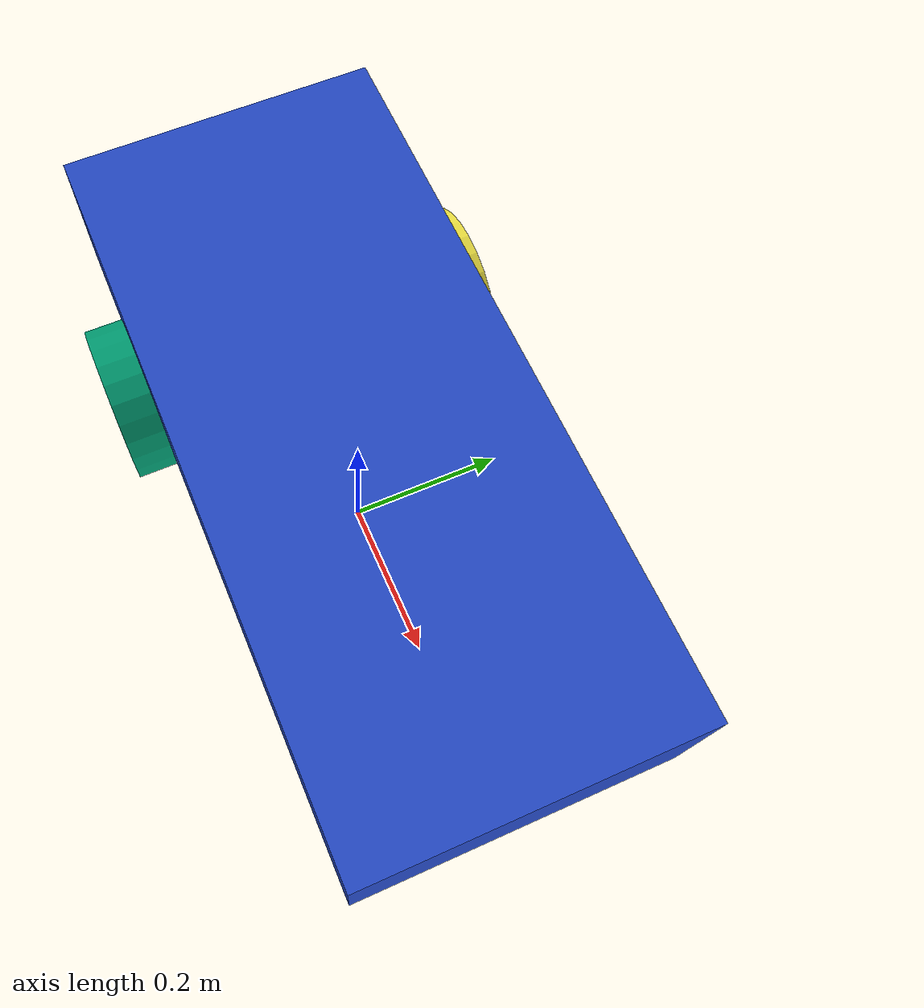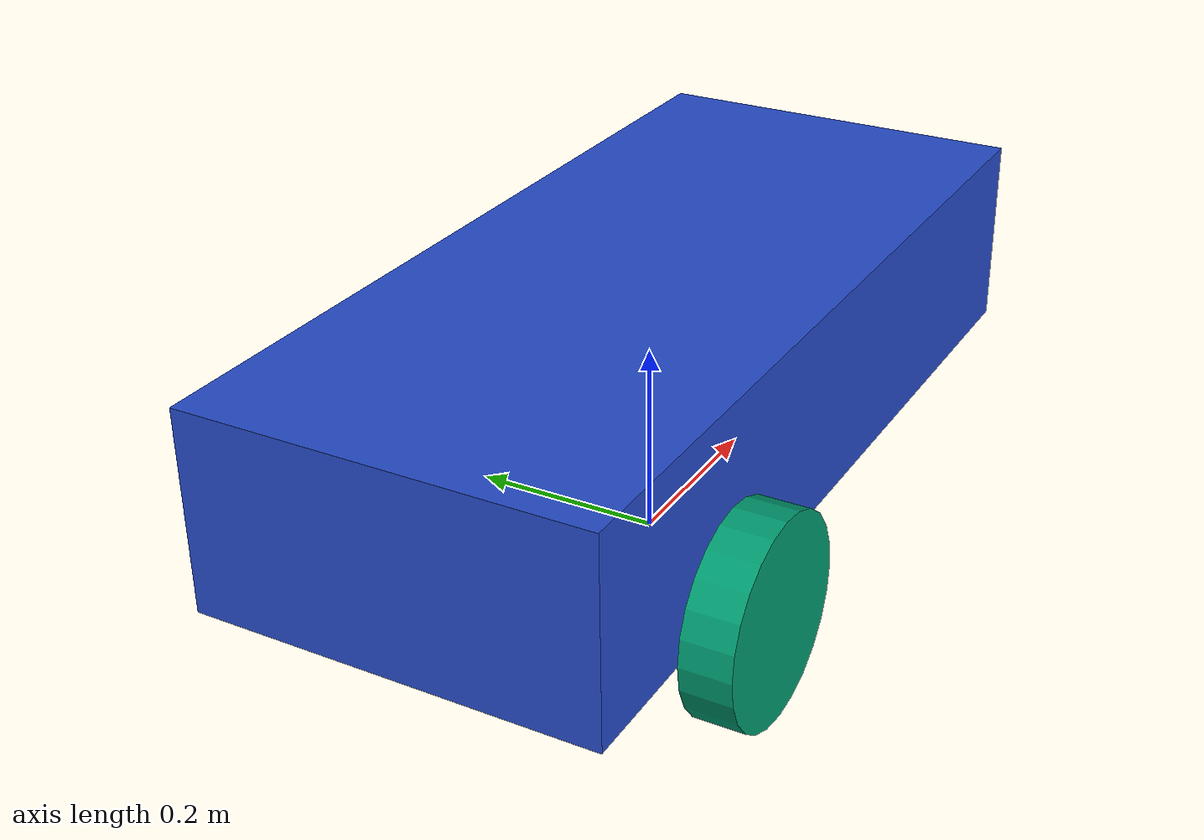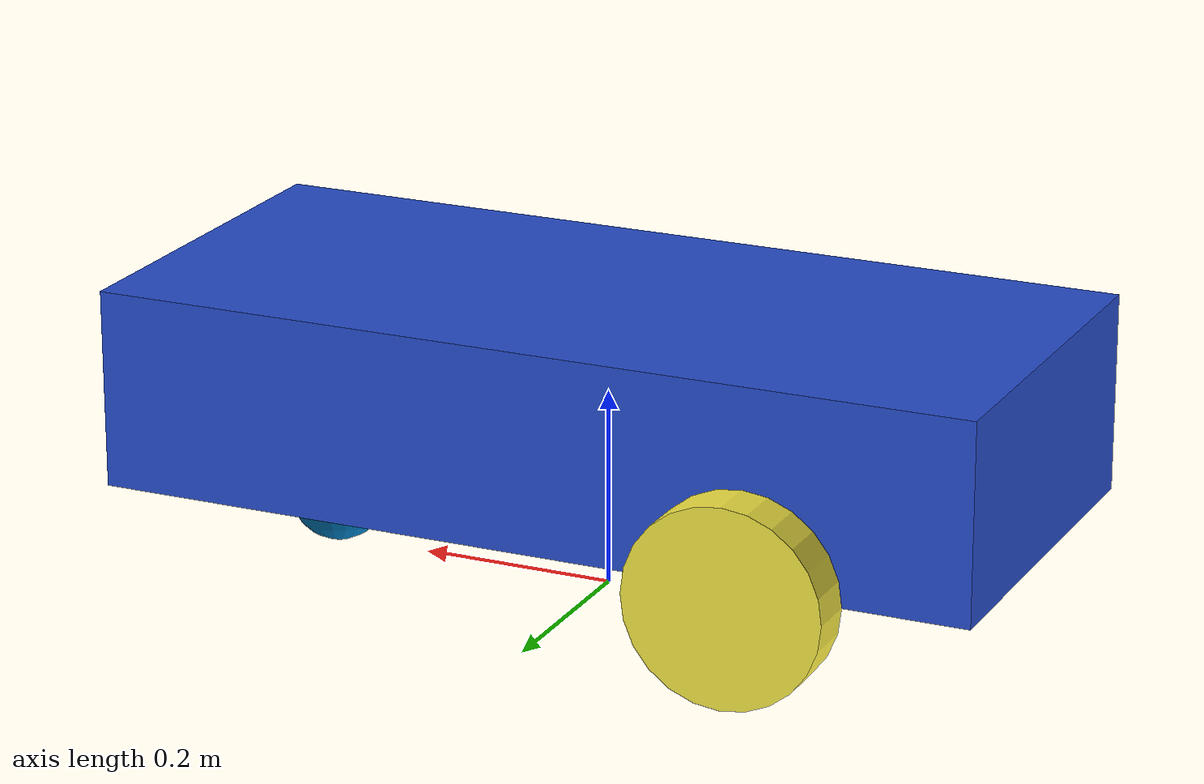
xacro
<?xml version="1.0"?>

<robot name="my_robot" xmlns:xacro="https://www.ros.org/wiki/xacro">

    <xacro:include filename="common_materials.xacro"/>
    <xacro:include filename="common_properties.urdf.xacro"/>

    <xacro:include filename="my_robot.urdf.xacro"/>
    <xacro:include filename="my_robot_gazebo_setup.xacro"/>

</robot>

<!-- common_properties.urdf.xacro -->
<robot xmlns:xacro="https://www.ros.org/wiki/xacro">

    <xacro:macro name="box_inertia" params="m x y z o_xyz o_rpy">
        <inertial>
            <mass value="${m}"/>
            <origin xyz="${o_xyz}" rpy="${o_rpy}"/>
            <inertia ixx="${(m/12) * (y*y + z*z)}" ixy="0" ixz="0"
                     iyy="${(m/12) * (x*x + z*z)}" iyz="0"
                     izz="${(m/12) * (x*x + y*y)}" />
        </inertial>
    </xacro:macro>

    <xacro:macro name="cylinder_inertia" params="m r l o_xyz o_rpy">
        <inertial>
            <mass value="${m}"/>
            <origin xyz="${o_xyz}" rpy="${o_rpy}"/>
            <inertia ixx="${(m/12) * (3*r*r + l*l)}" ixy="0" ixz="0"
                     iyy="${(m/12) * (3*r*r + l*l)}" iyz="0"
                     izz="${(m/2) * (r*r)}" />
        </inertial>
    </xacro:macro>

    <xacro:macro name="sphere_inertia" params="m r o_xyz o_rpy">
        <inertial>
            <mass value="${m}"/>
            <origin xyz="${o_xyz}" rpy="${o_rpy}"/>
            <inertia ixx="${(2/5) * m * (r*r)}" ixy="0" ixz="0"
                     iyy="${(2/5) * m * (r*r)}" iyz="0"
                     izz="${(2/5) * m * (r*r)}" />
        </inertial>
    </xacro:macro>

</robot>

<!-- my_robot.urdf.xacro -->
<robot  xmlns:xacro="https://www.ros.org/wiki/xacro">

    <!-- ==================== Materials ==================== -->

    <!-- ==================== Veriables ==================== -->

    <xacro:property name="base_length" value="0.9"/>
    <xacro:property name="base_width" value="0.4"/>
    <xacro:property name="base_height" value="0.2"/>
    <xacro:property name="wheel_radius" value="0.1"/>
    <xacro:property name="wheel_length" value="0.05"/>
    <xacro:property name="front_wheel_radius" value="${wheel_radius/2}"/>

    <!-- ==================== Functions ==================== -->
    <xacro:macro name="wheel_link" params="prefix">
        <link name="${prefix}_wheel">
            <visual>
                <geometry>
                    <cylinder radius="${wheel_radius}" length="${wheel_length}"/>
                </geometry>
                <origin xyz="0 0 0" rpy="${pi/2.0} 0 0"/>
                <material name="flange_steel"/>
            </visual>
            <collision>
                <geometry>
                    <sphere radius="${wheel_radius}"/>
                </geometry>
                <origin xyz="0 0 0" rpy="0 0 0"/>
            </collision>

            <xacro:cylinder_inertia m="1.0" r="${wheel_radius}" l="${wheel_length}" o_xyz="0 0 0" o_rpy="${pi/2.0} 0 0" />
        </link>

    </xacro:macro>

    <!-- ==================== Links & Joints  ==================== -->

    <!-- ==================== Base Link ==================== -->
    <link name="base_link">
        <visual>
            <geometry>
                <box size="${base_length} ${base_width} ${base_height}"/>
            </geometry>
            <origin xyz="0 0 ${base_height/2}" rpy="0 0 0"/>
            <material name="blue"/>
        </visual>
        <collision>
            <geometry>
                <box size="${base_length} ${base_width} ${base_height}"/>
            </geometry>
            <origin xyz="0 0 ${base_height/2}" rpy="0 0 0"/>
        </collision>
        <xacro:box_inertia m="5.0" x="${base_length}" y="${base_width}" z="${base_height}" o_xyz="0 0 ${base_height/2}" o_rpy="0 0 0" />
    </link>

    <link name="base_footprint"/>

    <joint name="origin_link" type="fixed">
        <parent link="base_footprint"/>
        <child link="base_link"/>
        <origin xyz="0 0 ${wheel_radius}" rpy="0 0 0"/>
    </joint>

    <!-- ==================== Left Wheel ==================== -->
    <xacro:wheel_link prefix="left"/>

    <!-- Base to Left Wheel Joint -->
    <joint name="base_left_wheel_joint" type="continuous">
        <parent link="base_link"/>
        <child link="left_wheel"/>
        <origin xyz="${-base_length/4.0} ${-(base_width + wheel_length)/2} 0" rpy="0 0 0"/>
        <axis xyz="0 1 0"/>
    </joint>

    <!-- ==================== Right Wheel ==================== -->
    <xacro:wheel_link prefix="right"/>

    <!-- Base to right Wheel Joint -->
    <joint name="base_right_wheel_joint" type="continuous">
        <parent link="base_link"/>
        <child link="right_wheel"/>
        <origin xyz="${-base_length/4.0} ${(base_width + wheel_length)/2} 0" rpy="0 0 0"/>
        <axis xyz="0 1 0"/>
    </joint>

    <!-- ==================== Front Wheel ==================== -->
    <link name="front_wheel">
        <visual>
            <geometry>
                <sphere radius="${front_wheel_radius}"/>
            </geometry>
            <origin xyz="0 0 0" rpy="0 0 0"/>
            <material name="flange_steel"/>
        </visual>
        <collision>
            <geometry>
                <sphere radius="${front_wheel_radius}"/>
            </geometry>
            <origin xyz="0 0 0" rpy="0 0 0"/>
        </collision>
        <xacro:sphere_inertia m="0.5" r="${front_wheel_radius}" o_xyz="0 0 0" o_rpy="0 0 0" />
    </link>

    <!-- Base to front Wheel Joint -->
    <joint name="base_front_wheel_joint" type="continuous">
        <parent link="base_link"/>
        <child link="front_wheel"/>
        <origin xyz="${base_length/3.0} 0 ${-front_wheel_radius}" rpy="0 0 0"/>
        <axis xyz="0 1 0"/>
    </joint>

</robot>
